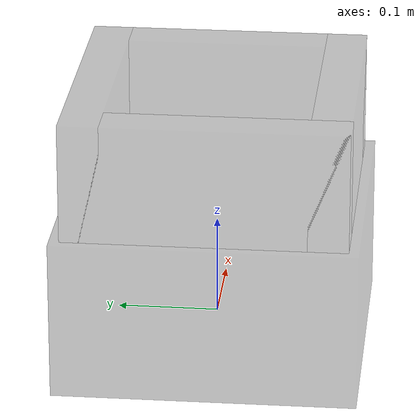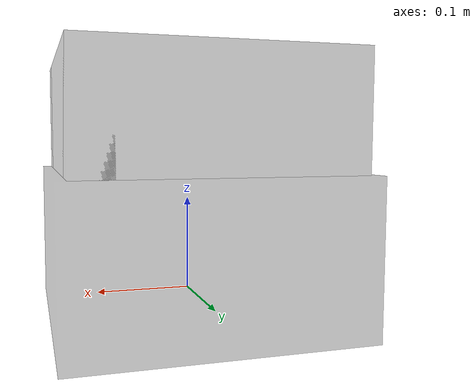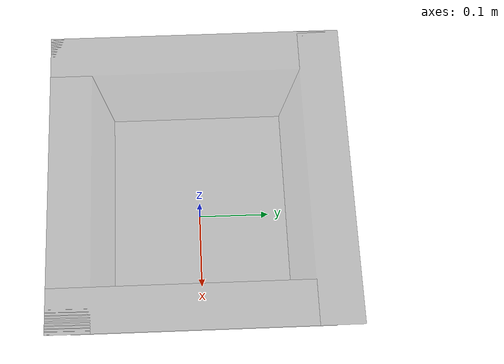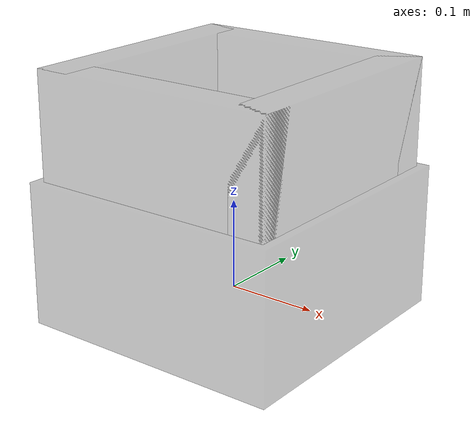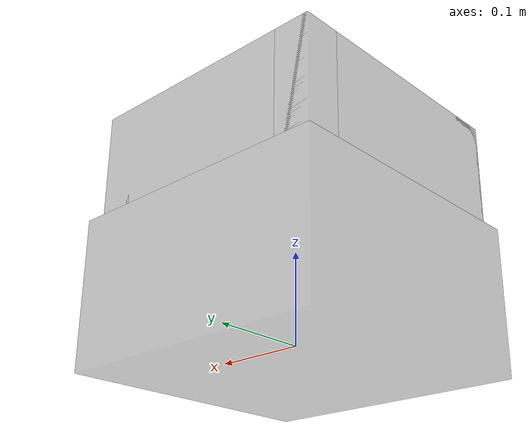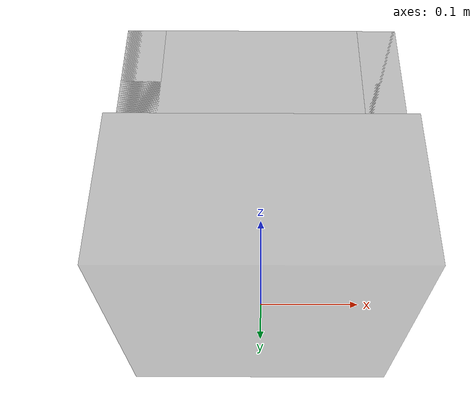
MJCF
<mujoco model="sink">
    <asset>
        <texture file="../textures/light-wood.png" type="2d" name="tex-light-wood"/>
        <material name="light-wood" reflectance="0.5" texrepeat="20 20" texture="tex-light-wood" texuniform="true"/>
    </asset>

    <worldbody>
        <body name="sink" pos="0 0 0.05">
            <freejoint></freejoint>
            <geom pos="0 0 0" size="0.15 0.15 0.08 " type="box" name="sink_bottom_collision" friction="1 0.005 0.0001"
                  rgba="0.1 0.1 0.1 0.3"/>
            <geom pos="0 0.12 0.1" size="0.14 0.02 0.1" type="box" name="sink_1_collision" friction="1 0.005 0.0001"
                  rgba="0.1 0.1 0.1 0.3"/>
            <geom pos="0 -0.12 0.1" size="0.14 0.02 0.1" type="box" name="sink_2_collision" friction="1 0.005 0.0001"
                  rgba="0.1 0.1 0.1 0.3"/>
            <geom pos="0.12 0  0.1" size="0.02 0.14 0.1" type="box" name="sink_3_collision" friction="1 0.005 0.0001"
                  rgba="0.1 0.1 0.1 0.3"/>
            <geom pos="-0.12 0  0.1" size="0.02 0.14 0.1" type="box" name="sink_4_collision" friction="1 0.005 0.0001"
                  rgba="0.1 0.1 0.1 0.3"/>
        </body>

    </worldbody>
</mujoco>
